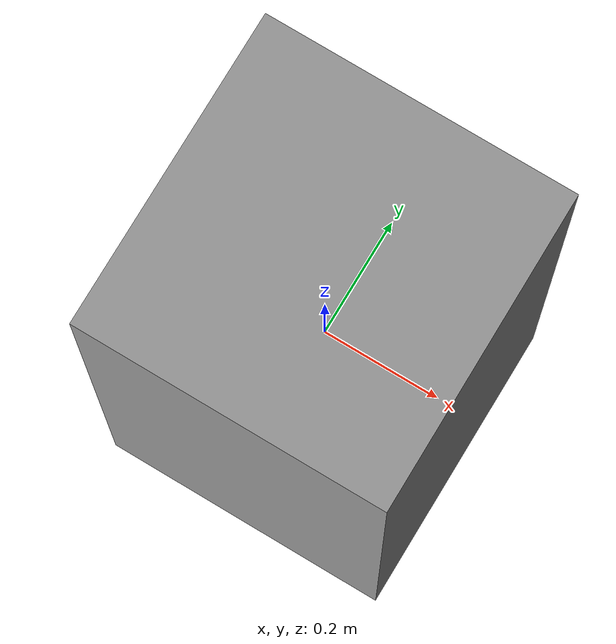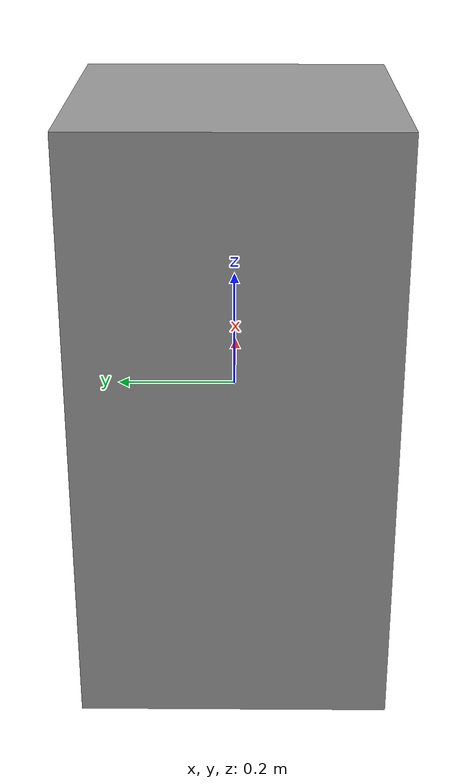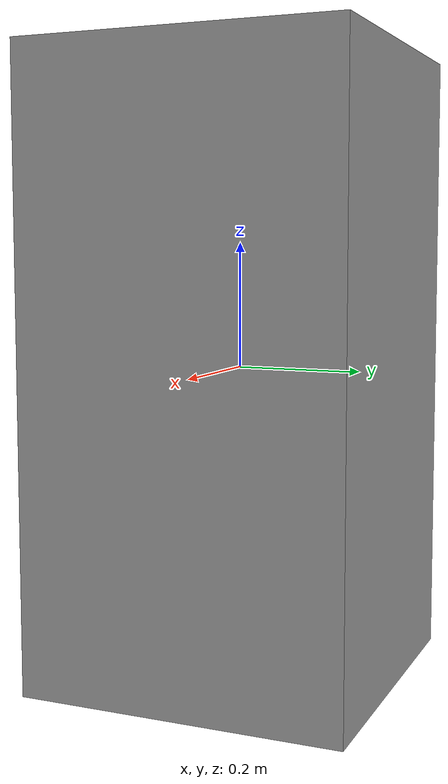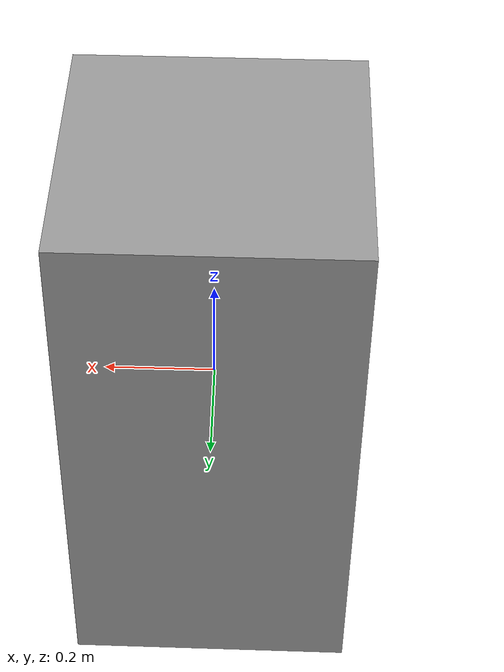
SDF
<?xml version='1.0'?>
<sdf version='1.7'>
  <model name='unit_box_relax1'>
    <link name='link'>
      <inertial>
        <mass>1</mass>
        <inertia>
          <ixx>0.105818</ixx>
          <ixy>0</ixy>
          <ixz>0</ixz>
          <iyy>0.104875</iyy>
          <iyz>0</iyz>
          <izz>0.0440408</izz>
        </inertia>
        <pose>0 0 0 0 -0 0</pose>
      </inertial>
      <self_collide>0</self_collide>
      <enable_wind>0</enable_wind>
      <kinematic>0</kinematic>
      <pose>0 0 0 0 -0 0</pose>
      <gravity>1</gravity>
      <visual name='visual'>
        <geometry>
          <box>
            <size>0.508518 0.519518 0.999957</size>
          </box>
        </geometry>
        <material>
          <script>
            <name>Gazebo/Grey</name>
            <uri>file://media/materials/scripts/gazebo.material</uri>
          </script>
          <shader type='pixel'>
            <normal_map>__default__</normal_map>
          </shader>
          <ambient>0.3 0.3 0.3 1</ambient>
          <diffuse>0.7 0.7 0.7 1</diffuse>
          <specular>0.01 0.01 0.01 1</specular>
          <emissive>0 0 0 1</emissive>
        </material>
        <pose>0 0 0 0 -0 0</pose>
        <transparency>0</transparency>
        <cast_shadows>1</cast_shadows>
      </visual>
      <collision name='collision'>
        <laser_retro>0</laser_retro>
        <max_contacts>20</max_contacts>
        <pose>0 0 0 0 -0 0</pose>
        <geometry>
          <box>
            <size>0.508518 0.519518 0.999957</size>
          </box>
        </geometry>
        <surface>
          <friction>
            <ode>
              <mu>1.14</mu>
              <mu2>1.14</mu2>
              <fdir1>0.707 0.707 0</fdir1>
              <slip1>0</slip1>
              <slip2>0</slip2>
            </ode>
            <torsional>
              <coefficient>1.14</coefficient>
              <patch_radius>0.5</patch_radius>
              <surface_radius>0.5</surface_radius>
              <use_patch_radius>0</use_patch_radius>
              <ode>
                <slip>0</slip>
              </ode>
            </torsional>
          </friction>
          <bounce>
            <restitution_coefficient>0.002</restitution_coefficient>
            <threshold>1e+06</threshold>
          </bounce>
          <contact>
            <collide_without_contact>0</collide_without_contact>
            <collide_without_contact_bitmask>1</collide_without_contact_bitmask>
            <collide_bitmask>1</collide_bitmask>
            <ode>
              <soft_cfm>0</soft_cfm>
              <soft_erp>0.2</soft_erp>
              <kp>1e+15</kp>
              <kd>1e+13</kd>
              <max_vel>0.01</max_vel>
              <min_depth>0</min_depth>
            </ode>
            <bullet>
              <split_impulse>1</split_impulse>
              <split_impulse_penetration_threshold>-0.01</split_impulse_penetration_threshold>
              <soft_cfm>0</soft_cfm>
              <soft_erp>0.2</soft_erp>
              <kp>1e+15</kp>
              <kd>1e+13</kd>
            </bullet>
          </contact>
        </surface>
      </collision>
    </link>
    <static>0</static>
    <allow_auto_disable>1</allow_auto_disable>
  </model>
</sdf>
